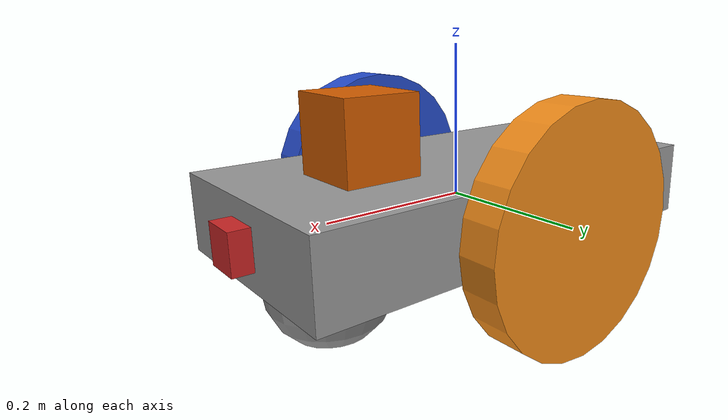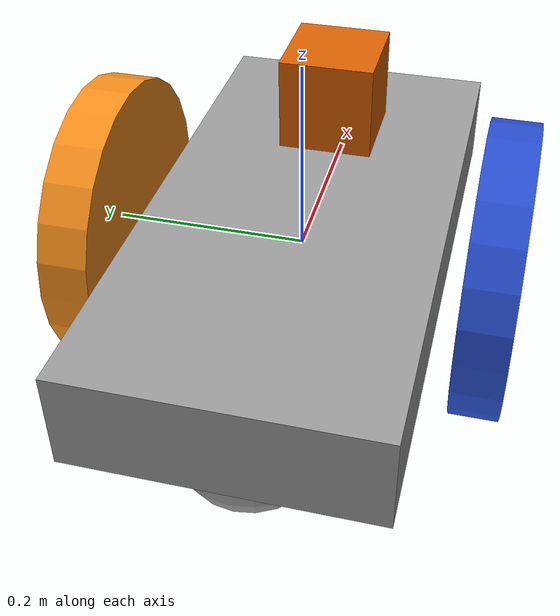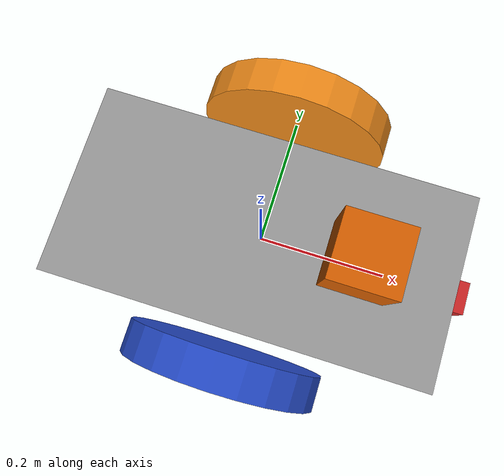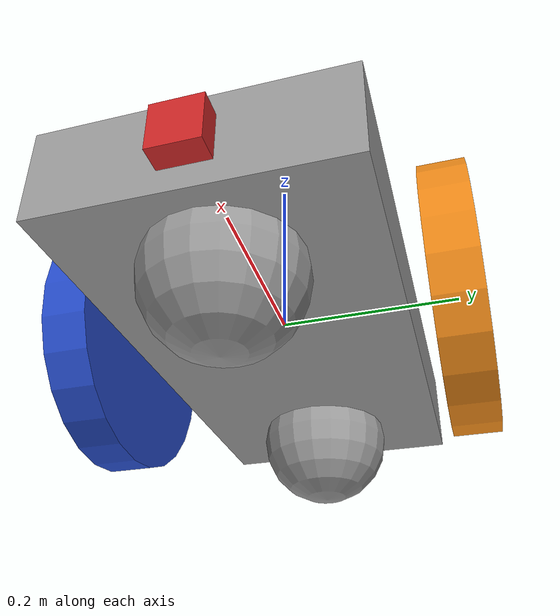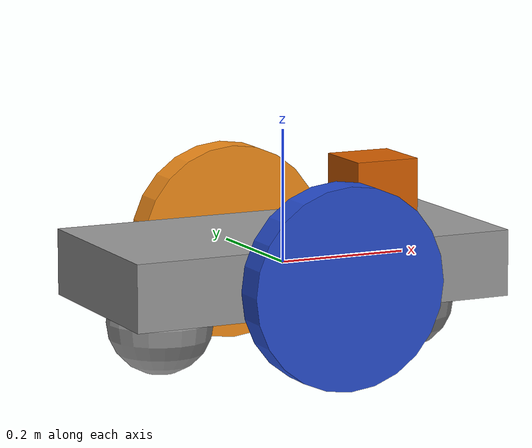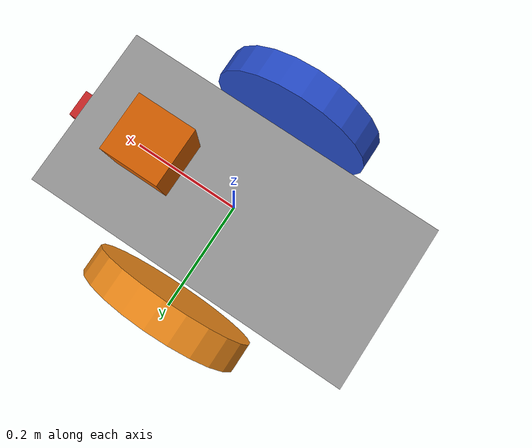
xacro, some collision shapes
<?xml version='1.0'?>

<robot name="my_robot" xmlns:xacro="http://www.ros.org/wiki/xacro">
  <gazebo reference="chassis">
    <material>Gazebo/Gray</material>
  </gazebo>
  <gazebo reference="left_wheel">
    <material>Gazebo/Orange</material>
  </gazebo>
  <gazebo reference="right_wheel">
    <material>Gazebo/Orange</material>
  </gazebo>
  <gazebo reference="camera">
    <material>Gazebo/Red</material>
  </gazebo>
  <xacro:include filename="$(find my_robot)/urdf/my_robot.gazebo" />

  <link name="robot_footprint"></link>

  <joint name="robot_footprint_joint" type="fixed">
    <origin xyz="0 0 0" rpy="0 0 0" />
    <parent link="robot_footprint"/>
    <child link="chassis" />
  </joint>

  <link name='chassis'>
    <pose>0 0 0.15 0 0 0</pose>

    <inertial>
      <mass value="15.0"/>
      <origin xyz="0.0 0 0" rpy=" 0 0 0"/>
      <inertia
          ixx="0.1125" ixy="0" ixz="0"
          iyy="0.45" iyz="0"
          izz="0.5625"
      />
    </inertial>

    <collision name='collision'>
      <origin xyz="0 0 0" rpy=" 0 0 0"/>
      <geometry>
        <box size=".6 .3 .1"/>
      </geometry>
    </collision>

    <visual name='chassis_visual'>
      <origin xyz="0 0 0" rpy=" 0 0 0"/>
      <geometry>
        <box size=".6 .3 .1"/>
      </geometry>
    </visual>

    <collision name='front_caster_collision'>
      <origin xyz="0.20 0 -0.07" rpy=" 0 0 0"/>
      <geometry>
        <sphere radius="0.079"/>
      </geometry>
    </collision>

    <visual name='front_caster_visual'>
      <origin xyz="0.20 0 -0.07" rpy=" 0 0 0"/>
      <geometry>
        <sphere radius="0.08"/>
      </geometry>
    </visual>

    <collision name='back_caster_collision'>
      <origin xyz="-0.20 0 -0.07" rpy=" 0 0 0"/>
      <geometry>
        <sphere radius="0.079"/>
      </geometry>
    </collision>

    <visual name='back_caster_visual'>
      <origin xyz="-0.20 0 -0.07" rpy=" 0 0 0"/>
      <geometry>
        <sphere radius="0.08"/>
      </geometry>
    </visual>

  </link>
  <link name="left_wheel">
    <pose>0 0 0 0 1.5707 1.5707</pose>

    <inertial>
      <mass value="2.0"/>
      <origin xyz="0.0 0 0" rpy="0 1.5707 1.5707"/>
      <inertia
          ixx="0.0116" ixy="0" ixz="0"
          iyy="0.0116" iyz="0"
          izz="0.0225"
      />
    </inertial>

    <collision name='left_wheel_collision'>
      <origin xyz="0 0 0" rpy="0 1.5707 1.5707"/>
      <geometry>
        <cylinder radius="0.15" length="0.05"/>
      </geometry>
    </collision>

    <visual name='left_wheel_visual'>
      <origin xyz="0 0 0" rpy="0 1.5707 1.5707"/>
      <geometry>
        <cylinder radius="0.15" length="0.05"/>
      </geometry>
    </visual>
  </link>
  <link name="right_wheel">
    <pose>0 0 0 0 1.5707 1.5707</pose>

    <inertial>
      <mass value="2.0"/>
      <origin xyz="0.0 0 0" rpy="0 1.5707 1.5707"/>
      <inertia
          ixx="0.0116" ixy="0" ixz="0"
          iyy="0.0116" iyz="0"
          izz="0.0225"
      />
    </inertial>

    <collision name='right_wheel_collision'>
      <origin xyz="0 0 0" rpy="0 1.5707 1.5707"/>
      <geometry>
        <cylinder radius="0.15" length="0.05"/>
      </geometry>
    </collision>

    <visual name='right_wheel_visual'>
      <origin xyz="0 0 0" rpy="0 1.5707 1.5707"/>
      <geometry>
        <cylinder radius="0.15" length="0.05"/>
      </geometry>
      <material name="blue"/>
    </visual>
  </link>
  <joint type="continuous" name="left_wheel_hinge">
    <origin xyz="0 0.2 0" rpy="0 0 0"/>
    <child link="left_wheel"/>
    <parent link="chassis"/>
    <axis xyz="0 1 0" rpy="0 0 0"/>
    <limit effort="10000" velocity="1000"/>
    <dynamics damping="1.0" friction="1.0"/>
  </joint>
  <joint type="continuous" name="right_wheel_hinge">
    <origin xyz="0 -0.2 0" rpy="0 0 0"/>
    <child link="right_wheel"/>
    <parent link="chassis"/>
    <axis xyz="0 1 0" rpy="0 0 0"/>
    <limit effort="10000" velocity="1000"/>
    <dynamics damping="1.0" friction="1.0"/>
  </joint>
  <link name="camera">
    <pose>0 0 0 0 0 0</pose>
    <inertial>
      <mass value="0.1"/>
      <origin xyz="0.0 0 0" rpy="0 0 0"/>
      <inertia
          ixx="1e-6" ixy="0" ixz="0"
          iyy="1e-6" iyz="0"
          izz="1e-6"
      />
    </inertial>
    <collision name='camera_collision'>
      <origin xyz="0 0 0" rpy="0 0 0"/>
      <geometry>
        <box size=".05 .05 .05"/>
      </geometry>
    </collision>
    <visual>
      <origin xyz="0 0 0" rpy="0 0 0"/>
      <geometry>
        <box size=".05 .05 .05"/>
      </geometry>
    </visual>
  </link>
  <joint type="fixed" name="camera_joint">
    <origin xyz="0.3 0 0" rpy="0 0 0"/>
    <child link="camera"/>
    <parent link="chassis"/>
    <axis xyz="0 1 0" rpy="0 0 0"/>
    <limit effort="10000" velocity="1000"/>
    <dynamics damping="1.0" friction="1.0"/>
  </joint>
  <link name="hokuyo">
    <pose>0 0 0 0 0 0</pose>
    <inertial>
      <mass value="1e-5"/>
      <origin xyz="0.0 0 0" rpy="0 0 0"/>
      <inertia
          ixx="1e-6" ixy="0" ixz="0"
          iyy="1e-6" iyz="0"
          izz="1e-6"
      />
    </inertial>
    <collision name='hokuyo_collision'>
      <origin xyz="0 0 0" rpy="0 0 0"/>
      <geometry>
        <box size=".1 .1 .1"/>
      </geometry>
    </collision>
    <visual name='hokuyo_visual'>
      <origin xyz="0 0 0" rpy="0 0 0"/>
      <geometry>
        <mesh filename="package://my_robot/meshes/hokuyo.dae"/>
      </geometry>
    </visual>
  </link>
  <joint type="fixed" name="hokuyo_joint">
    <origin xyz="0.15 0 0.1" rpy="0 0 0"/>
    <child link="hokuyo"/>
    <parent link="chassis"/>
    <axis xyz="0 1 0" rpy="0 0 0"/>
    <limit effort="10000" velocity="1000"/>
    <dynamics damping="1.0" friction="1.0"/>
  </joint>

  <joint name="camera_optical_joint" type="fixed">
    <origin xyz="0 0 0" rpy="-1.5707 0 -1.5707"/>
    <parent link="camera"/>
    <child link="camera_link_optical"/>
  </joint>

  <link name="camera_link_optical">
  </link>
</robot>
